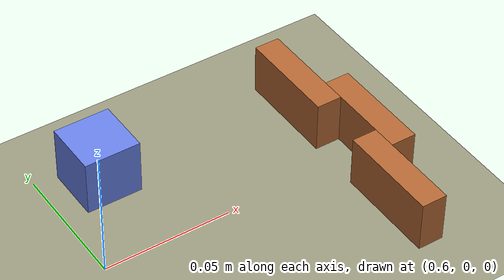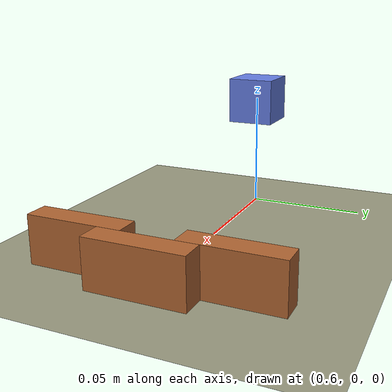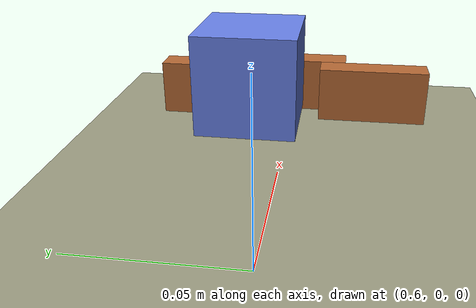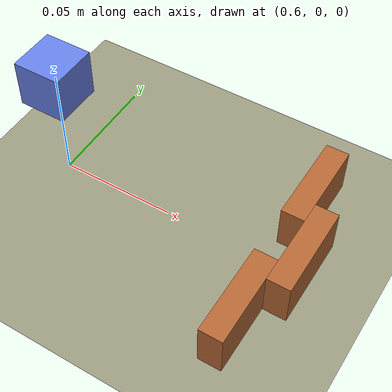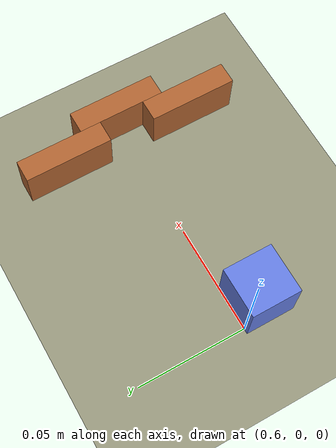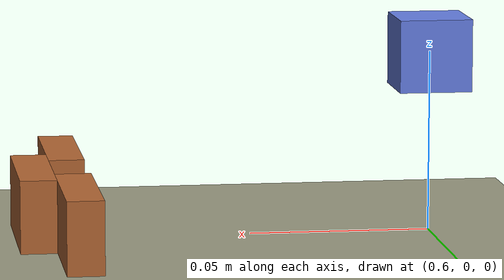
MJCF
<mujoco model='sawyer'>
    <compiler angle='radian' coordinate='local' />
	<option collision='all' impratio='5' cone='elliptic' timestep='0.001' gravity='0 0 -9.8' viscosity='0' iterations='20' />
    <size njmax='1500' nconmax='300' />

	<!--  ================= Visual Elements ================= /-->
	<asset>
		<material name='MatGnd' specular='.3' shininess='.3' reflectance='0.3' rgba='.5 .55 .5 1'/>
	</asset>

	<!--  ================= Physical Properties ================= /-->
	<default>
		<geom solref='0.01 1' solimp='0.95 0.95 0.01' condim='4'/>

		<default class='table'>
			<geom material='MatGnd' rgba='.6 .6 .5 1' solref='0.01 1' solimp='0.95 0.98 0.001' contype='1' condim='1' conaffinity='1' />
		</default>

		<default class='obstacle'>
			<geom material='MatGnd' rgba='.7 .4 .2 1' solref='0.01 1' solimp='0.95 0.98 0.001' contype='1' condim='1' conaffinity='1' />
		</default>

		<default class='object'>
			<geom rgba='0.4 0.5 0.9 1' solmix='0' density='400'/>
		</default>
	</default>

	<!--  ================= Kinematic Tree ================= /-->
    <worldbody>
		<light directional='true' cutoff='40' exponent='10' diffuse='.4 .4 .4' specular='.7 .7 .7' pos='0.9 0 1.5' dir='0 0 -1'/>

		<!--  ================= Table ================= /-->
		<geom name='tableTop' material='MatGnd' type='plane' pos='0.6 0 0' size='0.4 0.6 0.5' class='table'/>

		<!--  ================= Object ================= /-->
		<body name='object' pos='0.6 0 0.05' quat='1 0 0 0'>
			<geom type='box' class='object' size='0.01 0.01 0.01' pos='0 0 0'/>
			<joint type='free' limited='false' damping='0' armature='0' />
		</body>
		<!--  ================= Obstacle ================= /-->
		<body name='obstacle' pos='0.7 0 0.01' quat='1 0 0 0'>
			<geom type='box' class='obstacle' size='0.005 0.02 0.01' pos='0.01 0 0'/>
			<geom type='box' class='obstacle' size='0.005 0.02 0.01' pos='0 0.0305 0'/>
			<geom type='box' class='obstacle' size='0.005 0.02 0.01' pos='0 -0.0305 0'/>
		</body>
    </worldbody>

	<!--  ================= Sensors ================= /-->
	<sensor>
		<framepos name='obj_p' objtype='body' objname='object' />
		<framequat name='obj_r' objtype='body' objname='object' />
	</sensor>
</mujoco>
